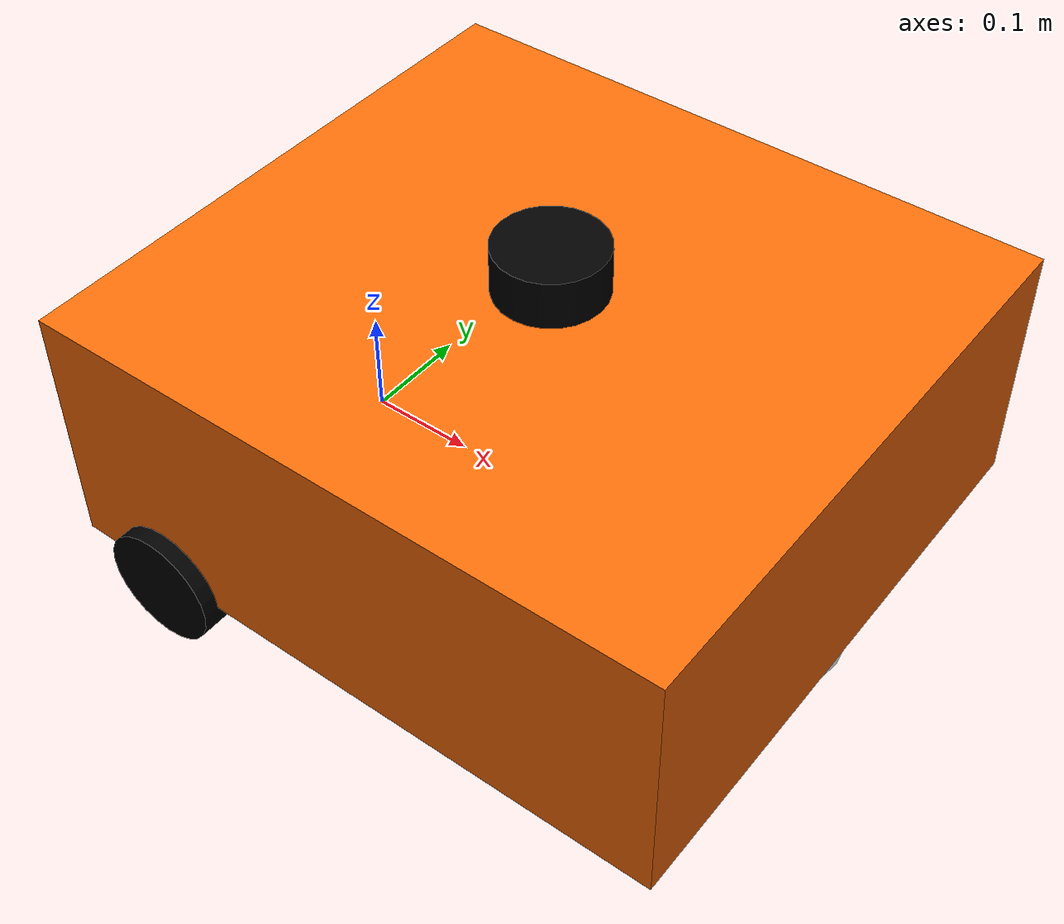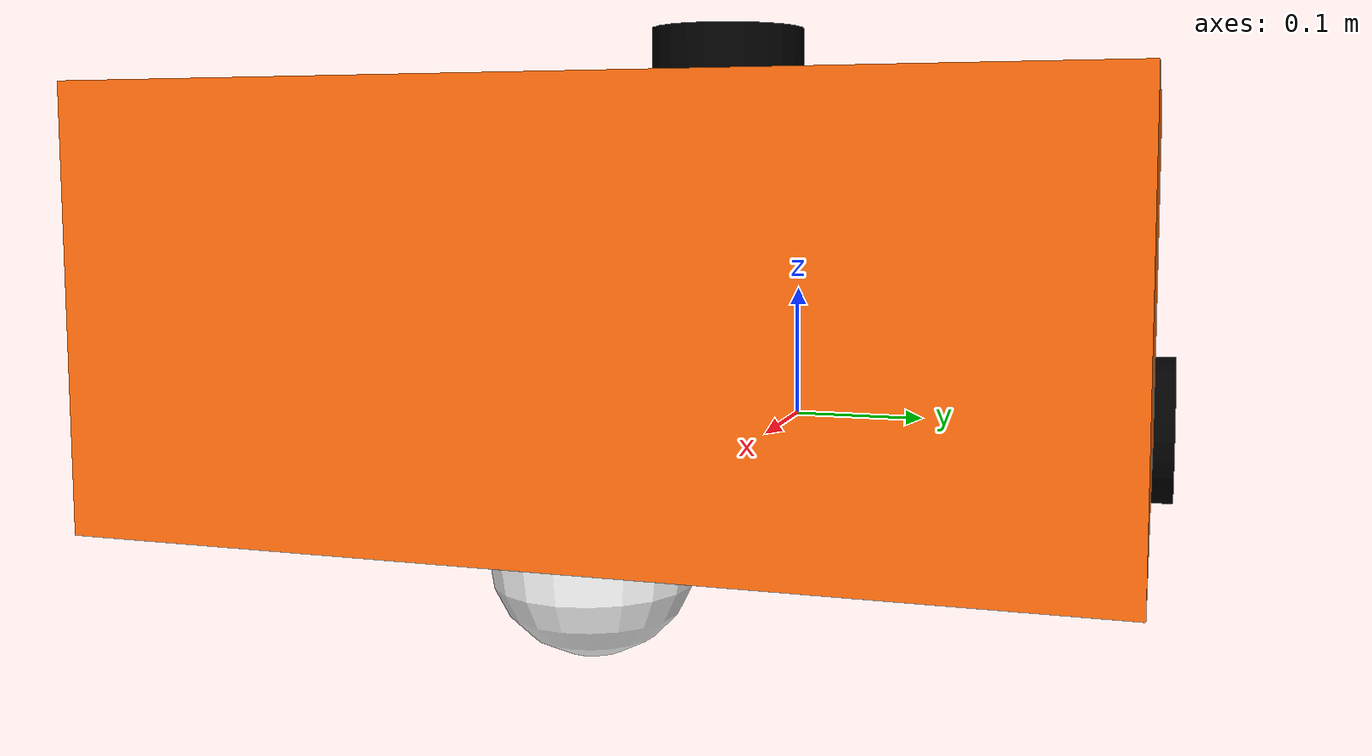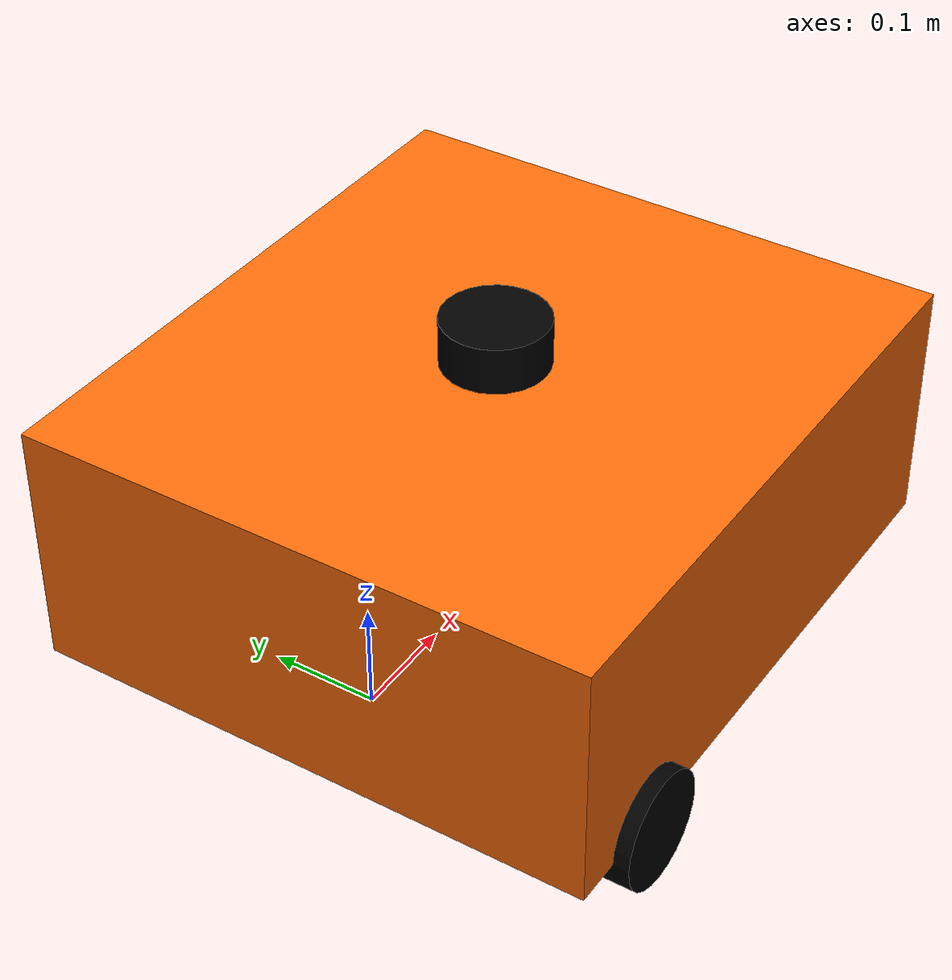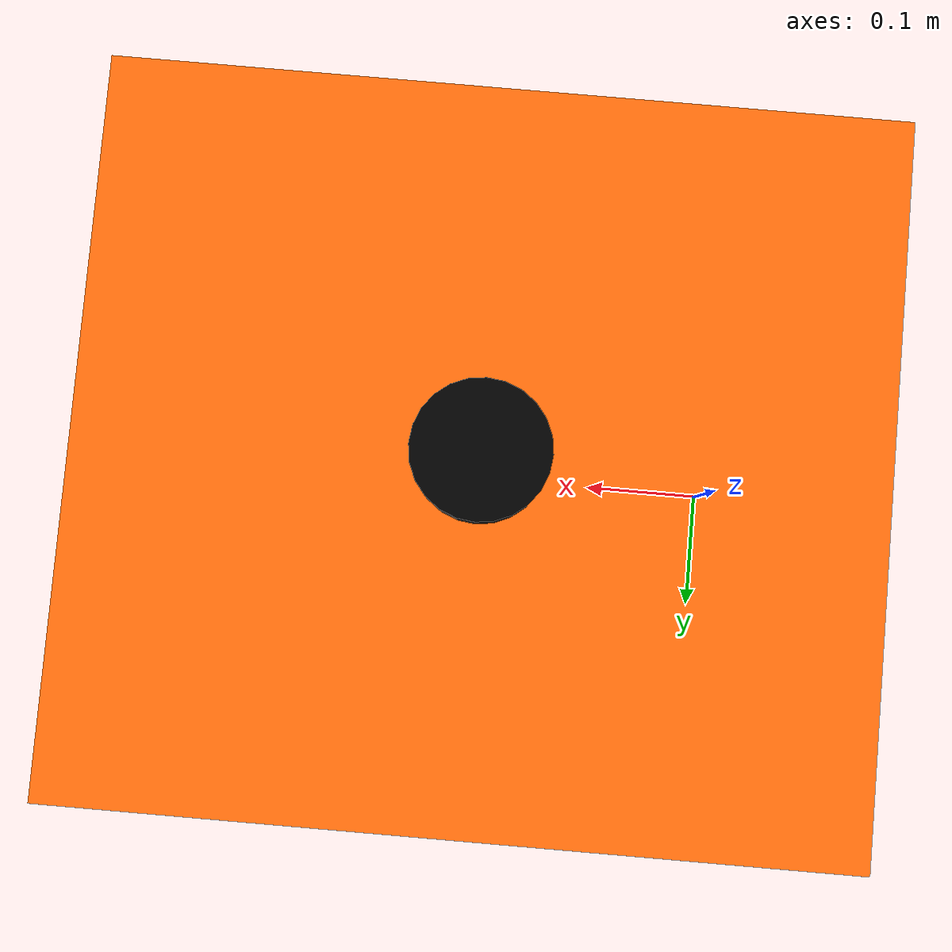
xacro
<?xml version="1.0"?>
<robot name="my_robot" xmlns:xacro="http://www.ros.org/wiki/xacro">

  <!-- Import materials -->
  <xacro:include filename="$(find my_robot_description)/urdf/my_robot.materials.xacro" />

  <!-- Import ros2_control -->
  <xacro:include filename="$(find my_robot_description)/urdf/my_robot.ros2_control.xacro" />

  <!-- Robot ölçüleri (Gerçek robot ölçüleri) -->
  <xacro:property name="PI" value="3.1415926535897931"/>
  <xacro:property name="base_width" value="0.55" />
  <xacro:property name="base_length" value="0.60" />
  <xacro:property name="base_height" value="0.24" />
  <xacro:property name="wheel_len" value="0.030" />
  <xacro:property name="wheel_radius" value="0.055" />
  <xacro:property name="caster_wheel_radius" value="0.055" />
  <xacro:property name="axle_offset" value="0.10" />

  <!-- Root frame -->
  <link name="base_footprint" />

  <!-- Gövde (base_link) -->
  <link name="base_link">
    <collision>
      <origin xyz="${base_length/2 - axle_offset} 0 ${base_height/2}" rpy="0 0 0"/>
      <geometry>
        <box size="${base_length} ${base_width} ${base_height}"/>
      </geometry>
    </collision>

    <visual>
      <origin xyz="${base_length/2 - axle_offset} 0 ${base_height/2}" rpy="0 0 0"/>
      <geometry>
        <box size="${base_length} ${base_width} ${base_height}"/>
      </geometry>
      <material name="orange"/>
    </visual>

    <inertial>
      <mass value="5.0"/>
      <origin xyz="${base_length/2 - axle_offset} 0 ${base_height/2}"/>
      <inertia
        ixx="0.10" ixy="0" ixz="0"
        iyy="0.10" iyz="0"
        izz="0.10"/>
    </inertial>
  </link>

  <!-- base_footprint -> base_link joint -->
  <joint name="base_joint" type="fixed">
    <parent link="base_footprint"/>
    <child link="base_link"/>
    <origin xyz="0 0 0" rpy="0 0 0"/>
  </joint>

  <!-- LIDAR -->
  <xacro:property name="laser_radius" value="0.05"/>
  <xacro:property name="laser_length" value="0.045"/>
  <xacro:property name="laser_origin_z" value="${base_height * 1.1}"/>

  <joint name="base_link_to_laser" type="fixed">
    <parent link="base_link"/>
    <child link="laser_link"/>
    <origin xyz="${base_length/2 - axle_offset} 0 ${laser_origin_z}" rpy="0 0 0"/>
  </joint>

  <link name="laser_link">
    <visual>
      <origin xyz="0 0 0" rpy="0 0 0"/>
      <geometry>
        <cylinder radius="${laser_radius}" length="${laser_length}"/>
      </geometry>
      <material name="black"/>
    </visual>
    <collision>
      <origin xyz="0 0 0" rpy="0 0 0"/>
      <geometry>
        <cylinder radius="${laser_radius}" length="${laser_length}"/>
      </geometry>
    </collision>
    <inertial>
      <mass value="0.1"/>
      <origin xyz="0 0 0"/>
      <inertia
        ixx="0.001" ixy="0" ixz="0"
        iyy="0.001" iyz="0"
        izz="0.001"/>
    </inertial>
  </link>

  <!-- Sol Teker -->
  <joint name="left_wheel_joint" type="continuous">
    <parent link="base_link"/>
    <child link="left_wheel"/>
    <origin xyz="0 ${base_width/2} 0" rpy="0 0 0"/>
    <axis xyz="0 1 0"/>
    <dynamics damping="0.2"/>
  </joint>

  <link name="left_wheel">
    <collision>
      <origin xyz="0 0 0" rpy="${PI/2} 0 0"/>
      <geometry>
        <cylinder length="${wheel_len}" radius="${wheel_radius}"/>
      </geometry>
    </collision>
    <visual>
      <origin xyz="0 0 0" rpy="${PI/2} 0 0"/>
      <geometry>
        <cylinder length="${wheel_len}" radius="${wheel_radius}"/>
      </geometry>
      <material name="black"/>
    </visual>
    <inertial>
      <mass value="1.0"/>
      <origin xyz="0 0 0"/>
      <inertia
        ixx="0.01" ixy="0" ixz="0"
        iyy="0.01" iyz="0"
        izz="0.01"/>
    </inertial>
  </link>

  <!-- Sağ Teker -->
  <joint name="right_wheel_joint" type="continuous">
    <parent link="base_link"/>
    <child link="right_wheel"/>
    <origin xyz="0 -${base_width/2} 0" rpy="0 0 0"/>
    <axis xyz="0 1 0"/>
    <dynamics damping="0.2"/>
  </joint>

  <link name="right_wheel">
    <collision>
      <origin xyz="0 0 0" rpy="${PI/2} 0 0"/>
      <geometry>
        <cylinder length="${wheel_len}" radius="${wheel_radius}"/>
      </geometry>
    </collision>
    <visual>
      <origin xyz="0 0 0" rpy="${PI/2} 0 0"/>
      <geometry>
        <cylinder length="${wheel_len}" radius="${wheel_radius}"/>
      </geometry>
      <material name="black"/>
    </visual>
    <inertial>
      <mass value="1.0"/>
      <origin xyz="0 0 0"/>
      <inertia
        ixx="0.01" ixy="0" ixz="0"
        iyy="0.01" iyz="0"
        izz="0.01"/>
    </inertial>
  </link>

  <!-- Ön Caster Teker -->
  <joint name="caster_frontal_wheel_joint" type="fixed">
    <parent link="base_link"/>
    <child link="caster_frontal_wheel"/>
    <origin xyz="${base_length - axle_offset - caster_wheel_radius} 0 ${-wheel_radius + caster_wheel_radius}" rpy="0 0 0"/>
  </joint>

  <link name="caster_frontal_wheel">
    <collision>
      <origin xyz="0 0 0" rpy="0 0 0"/>
      <geometry>
        <sphere radius="${caster_wheel_radius}"/>
      </geometry>
    </collision>
    <visual>
      <origin xyz="0 0 0" rpy="0 0 0"/>
      <geometry>
        <sphere radius="${caster_wheel_radius}"/>
      </geometry>
      <material name="white"/>
    </visual>
    <inertial>
      <mass value="0.3"/>
      <origin xyz="0 0 0"/>
      <inertia
        ixx="0.001" ixy="0" ixz="0"
        iyy="0.001" iyz="0"
        izz="0.001"/>
    </inertial>
  </link>

  <!-- ROS2 Control -->
  <xacro:my_robot_ros2_control name="my_robot" prefix="" />

</robot>

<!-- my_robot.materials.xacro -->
<!--
Materials for robot visualization
Based on Teknofest robot materials
-->
<robot xmlns:xacro="http://www.ros.org/wiki/xacro">

  <material name="black">
    <color rgba="0.0 0.0 0.0 1.0"/>
  </material>

  <material name="blue">
    <color rgba="0.0 0.0 0.8 1.0"/>
  </material>

  <material name="green">
    <color rgba="0.0 0.8 0.0 1.0"/>
  </material>

  <material name="grey">
    <color rgba="0.2 0.2 0.2 1.0"/>
  </material>

  <material name="orange">
    <color rgba="${255/255} ${108/255} ${10/255} 1.0"/>
  </material>

  <material name="brown">
    <color rgba="${222/255} ${207/255} ${195/255} 1.0"/>
  </material>

  <material name="red">
    <color rgba="0.8 0.0 0.0 1.0"/>
  </material>

  <material name="white">
    <color rgba="1.0 1.0 1.0 1.0"/>
  </material>

</robot>
